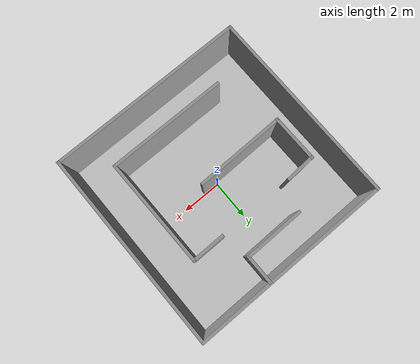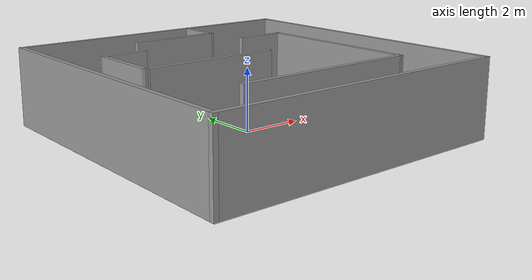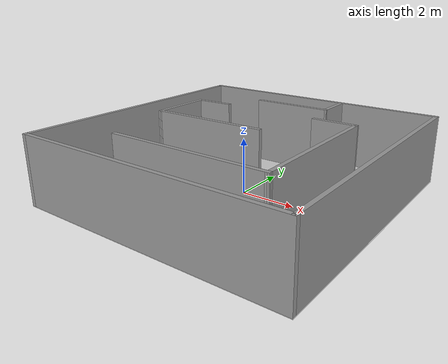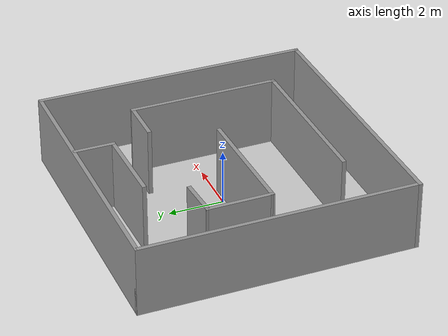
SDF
<sdf version="1.7">
 <world name="default">
  <scene><ambient>0.4 0.4 0.4 1</ambient><background>0.7 0.7 0.7 1</background><shadows>0</shadows></scene>
  <light name="sun" type="directional">
   <pose>0 0 10 0 -0 0</pose>
   <diffuse>0.8 0.8 0.8 1</diffuse>
   <specular>0.2 0.2 0.2 1</specular>
   <attenuation>
    <range>1000</range>
    <constant>0.9</constant>
    <linear>0.01</linear>
    <quadratic>0.001</quadratic>
   </attenuation>
   <direction>-0.5 0.1 -0.9</direction>
   <spot><inner_angle>0</inner_angle><outer_angle>0</outer_angle><falloff>0</falloff></spot>
  </light>
  <physics type="ode">
   <real_time_update_rate>1000</real_time_update_rate>
   <max_step_size>0.001</max_step_size>
   <real_time_factor>1</real_time_factor>
   <ode>
    <solver>
     <type>quick</type>
     <iters>150</iters>
     <precon_iters>0</precon_iters>
     <sor>1.4</sor>
     <use_dynamic_moi_rescaling>1</use_dynamic_moi_rescaling>
    </solver>
    <constraints>
     <cfm>1e-05</cfm>
     <erp>0.2</erp>
     <contact_max_correcting_vel>2000</contact_max_correcting_vel>
     <contact_surface_layer>0.01</contact_surface_layer>
    </constraints>
   </ode>
  </physics>
  <gravity>0 0 -9.8</gravity>
  <magnetic_field>6e-06 2.3e-05 -4.2e-05</magnetic_field>
  <atmosphere type="adiabatic"/>
  <spherical_coordinates>
   <surface_model>EARTH_WGS84</surface_model>
   <latitude_deg>0</latitude_deg>
   <longitude_deg>0</longitude_deg>
   <elevation>0</elevation>
   <heading_deg>0</heading_deg>
  </spherical_coordinates>
  <model name="map_1">
   <static>1</static>
   <link name="link">
    <collision name="collision">
     <geometry><plane><normal>0 0 1</normal><size>10 10</size></plane></geometry>
     <surface><friction><ode><mu>100</mu><mu2>50</mu2></ode></friction></surface>
    </collision>
    <visual name="visual">
     <cast_shadows>0</cast_shadows>
     <geometry><plane><normal>0 0 1</normal><size>10 10</size></plane></geometry>
     <material>
      <script>
       <uri>model://map_1/materials/scripts</uri>
       <uri>model://map_1/materials/textures/</uri>
       <name>Map1/Image</name>
      </script>
     </material>
    </visual>
   </link>
  </model>
  <model name="Untitled">
   <pose>-0.0155 0.0005 0 0 -0 0</pose>
   <link name="Wall_0">
    <collision name="Wall_0_Collision">
     <geometry><box><size>10 0.15 2.5</size></box></geometry>
     <pose>0 0 1.25 0 -0 0</pose>
    </collision>
    <visual name="Wall_0_Visual">
     <pose>0 0 1.25 0 -0 0</pose>
     <geometry><box><size>10 0.15 2.5</size></box></geometry>
     <material>
      <script><uri>file://media/materials/scripts/gazebo.material</uri><name>Gazebo/Grey</name></script>
      <ambient>1 1 1 1</ambient>
     </material>
     <meta><layer>0</layer></meta>
    </visual>
    <pose>-0 4.925 0 0 -0 0</pose>
   </link>
   <link name="Wall_1">
    <collision name="Wall_1_Collision">
     <geometry><box><size>10 0.15 2.5</size></box></geometry>
     <pose>0 0 1.25 0 -0 0</pose>
    </collision>
    <visual name="Wall_1_Visual">
     <pose>0 0 1.25 0 -0 0</pose>
     <geometry><box><size>10 0.15 2.5</size></box></geometry>
     <material>
      <script><uri>file://media/materials/scripts/gazebo.material</uri><name>Gazebo/Grey</name></script>
      <ambient>1 1 1 1</ambient>
     </material>
     <meta><layer>0</layer></meta>
    </visual>
    <pose>4.925 -0 0 0 -0 -1.5708</pose>
   </link>
   <link name="Wall_10">
    <collision name="Wall_10_Collision">
     <geometry><box><size>1.5 0.15 2.5</size></box></geometry>
     <pose>0 0 1.25 0 -0 0</pose>
    </collision>
    <visual name="Wall_10_Visual">
     <pose>0 0 1.25 0 -0 0</pose>
     <geometry><box><size>1.5 0.15 2.5</size></box></geometry>
     <material>
      <script><uri>file://media/materials/scripts/gazebo.material</uri><name>Gazebo/Grey</name></script>
      <ambient>1 1 1 1</ambient>
     </material>
     <meta><layer>0</layer></meta>
    </visual>
    <pose>1.24372 4.19302 0 0 -0 1.5708</pose>
   </link>
   <link name="Wall_18">
    <collision name="Wall_18_Collision">
     <geometry><box><size>1.70776 0.15 2.5</size></box></geometry>
     <pose>0 0 1.25 0 -0 0</pose>
    </collision>
    <visual name="Wall_18_Visual">
     <pose>0 0 1.25 0 -0 0</pose>
     <geometry><box><size>1.70776 0.15 2.5</size></box></geometry>
     <material>
      <script><uri>file://media/materials/scripts/gazebo.material</uri><name>Gazebo/Grey</name></script>
      <ambient>1 1 1 1</ambient>
     </material>
     <meta><layer>0</layer></meta>
    </visual>
    <pose>2.31513 2.1292 0 0 -0 0.001825</pose>
   </link>
   <link name="Wall_19">
    <collision name="Wall_19_Collision">
     <geometry><box><size>5.49519 0.15 2.5</size></box></geometry>
     <pose>0 0 1.25 0 -0 0</pose>
    </collision>
    <visual name="Wall_19_Visual">
     <pose>0 0 1.25 0 -0 0</pose>
     <geometry><box><size>5.49519 0.15 2.5</size></box></geometry>
     <material>
      <script><uri>file://media/materials/scripts/gazebo.material</uri><name>Gazebo/Grey</name></script>
      <ambient>1 1 1 1</ambient>
     </material>
     <meta><layer>0</layer></meta>
    </visual>
    <pose>3.1163 -0.541886 0 0 -0 -1.56246</pose>
   </link>
   <link name="Wall_2">
    <collision name="Wall_2_Collision">
     <geometry><box><size>10 0.15 2.5</size></box></geometry>
     <pose>0 0 1.25 0 -0 0</pose>
    </collision>
    <visual name="Wall_2_Visual">
     <pose>0 0 1.25 0 -0 0</pose>
     <geometry><box><size>10 0.15 2.5</size></box></geometry>
     <material>
      <script><uri>file://media/materials/scripts/gazebo.material</uri><name>Gazebo/Grey</name></script>
      <ambient>1 1 1 1</ambient>
     </material>
     <meta><layer>0</layer></meta>
    </visual>
    <pose>-0 -4.925 0 0 -0 3.14159</pose>
   </link>
   <link name="Wall_20">
    <collision name="Wall_20_Collision">
     <geometry><box><size>6 0.15 2.5</size></box></geometry>
     <pose>0 0 1.25 0 -0 0</pose>
    </collision>
    <visual name="Wall_20_Visual">
     <pose>0 0 1.25 0 -0 0</pose>
     <geometry><box><size>6 0.15 2.5</size></box></geometry>
     <material>
      <script><uri>file://media/materials/scripts/gazebo.material</uri><name>Gazebo/Grey</name></script>
      <ambient>1 1 1 1</ambient>
     </material>
     <meta><layer>0</layer></meta>
    </visual>
    <pose>0.213591 -3.21439 0 0 -0 3.14159</pose>
   </link>
   <link name="Wall_22">
    <collision name="Wall_22_Collision">
     <geometry><box><size>1.52826 0.15 2.5</size></box></geometry>
     <pose>0 0 1.25 0 -0 0</pose>
    </collision>
    <visual name="Wall_22_Visual">
     <pose>0 0 1.25 0 -0 0</pose>
     <geometry><box><size>1.52826 0.15 2.5</size></box></geometry>
     <material>
      <script><uri>file://media/materials/scripts/gazebo.material</uri><name>Gazebo/Grey</name></script>
      <ambient>1 1 1 1</ambient>
     </material>
     <meta><layer>0</layer></meta>
    </visual>
    <pose>-2.98283 2.08467 0 0 -0 -3.0867</pose>
   </link>
   <link name="Wall_23">
    <collision name="Wall_23_Collision">
     <geometry><box><size>2.41092 0.15 2.5</size></box></geometry>
     <pose>0 0 1.25 0 -0 0</pose>
    </collision>
    <visual name="Wall_23_Visual">
     <pose>0 0 1.25 0 -0 0</pose>
     <geometry><box><size>2.41092 0.15 2.5</size></box></geometry>
     <material>
      <script><uri>file://media/materials/scripts/gazebo.material</uri><name>Gazebo/Grey</name></script>
      <ambient>1 1 1 1</ambient>
     </material>
     <meta><layer>0</layer></meta>
    </visual>
    <pose>-3.66335 0.916427 0 0 -0 -1.56411</pose>
   </link>
   <link name="Wall_24">
    <collision name="Wall_24_Collision">
     <geometry><box><size>4.52104 0.15 2.5</size></box></geometry>
     <pose>0 0 1.25 0 -0 0</pose>
    </collision>
    <visual name="Wall_24_Visual">
     <pose>0 0 1.25 0 -0 0</pose>
     <geometry><box><size>4.52104 0.15 2.5</size></box></geometry>
     <material>
      <script><uri>file://media/materials/scripts/gazebo.material</uri><name>Gazebo/Grey</name></script>
      <ambient>1 1 1 1</ambient>
     </material>
     <meta><layer>0</layer></meta>
    </visual>
    <pose>-1.47054 -0.179982 0 0 -0 0.01557</pose>
   </link>
   <link name="Wall_3">
    <collision name="Wall_3_Collision">
     <geometry><box><size>10 0.15 2.5</size></box></geometry>
     <pose>0 0 1.25 0 -0 0</pose>
    </collision>
    <visual name="Wall_3_Visual">
     <pose>0 0 1.25 0 -0 0</pose>
     <geometry><box><size>10 0.15 2.5</size></box></geometry>
     <material>
      <script><uri>file://media/materials/scripts/gazebo.material</uri><name>Gazebo/Grey</name></script>
      <ambient>1 1 1 1</ambient>
     </material>
     <meta><layer>0</layer></meta>
    </visual>
    <pose>-4.925 -0 0 0 -0 1.5708</pose>
   </link>
   <link name="Wall_9">
    <collision name="Wall_9_Collision">
     <geometry><box><size>3.03142 0.15 2.5</size></box></geometry>
     <pose>0 0 1.25 0 -0 0</pose>
    </collision>
    <visual name="Wall_9_Visual">
     <pose>0 0 1.25 0 -0 0</pose>
     <geometry><box><size>3.03142 0.15 2.5</size></box></geometry>
     <material>
      <script><uri>file://media/materials/scripts/gazebo.material</uri><name>Gazebo/Grey</name></script>
      <ambient>1 1 1 1</ambient>
     </material>
     <meta><layer>0</layer></meta>
    </visual>
    <pose>-0.196864 3.49921 0 0 -0 0.013058</pose>
   </link>
   <static>1</static>
  </model>
 </world>
</sdf>
